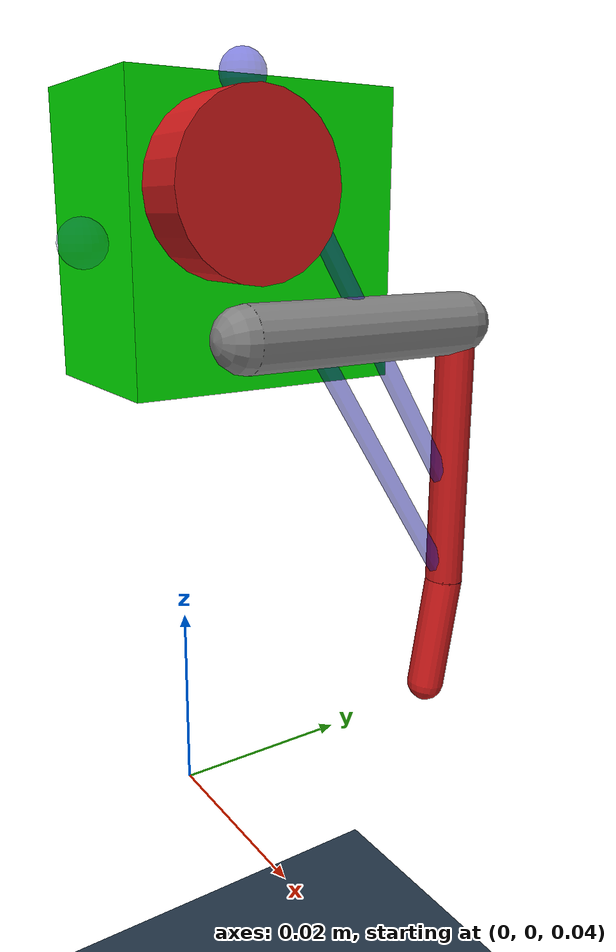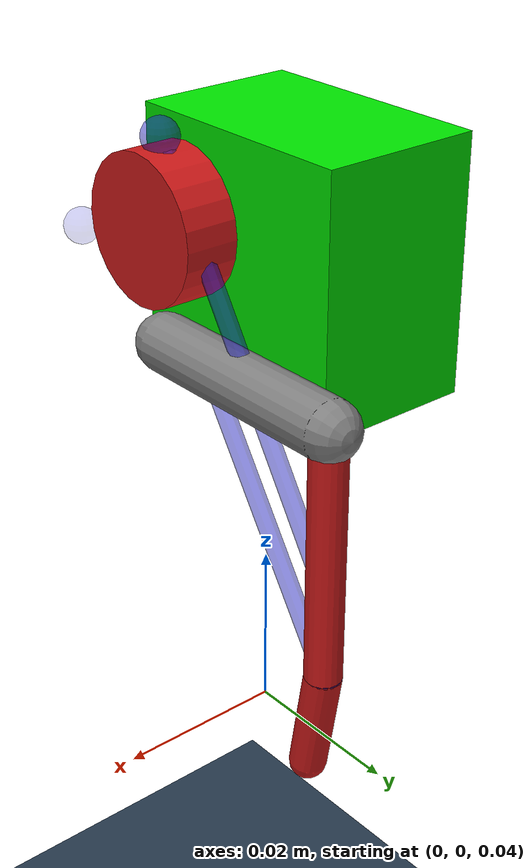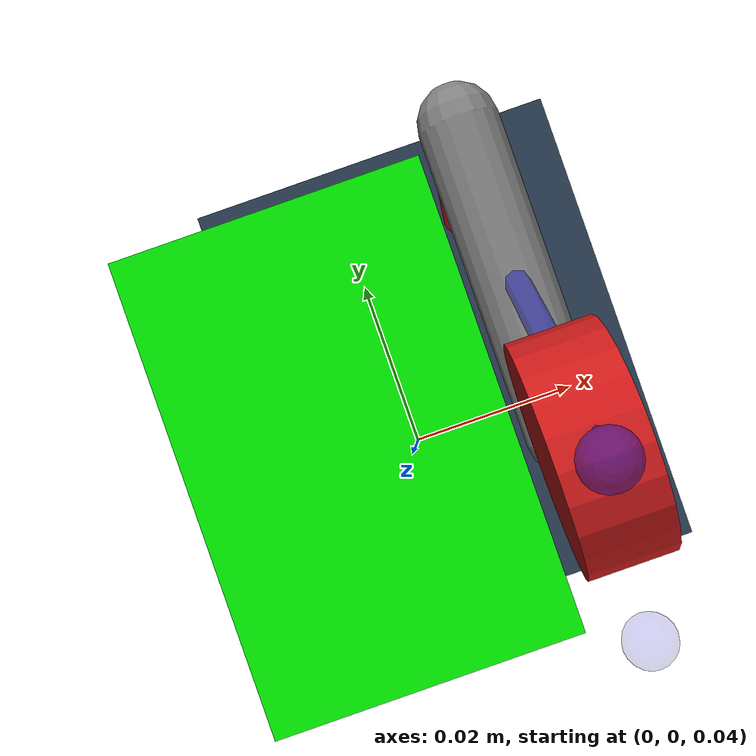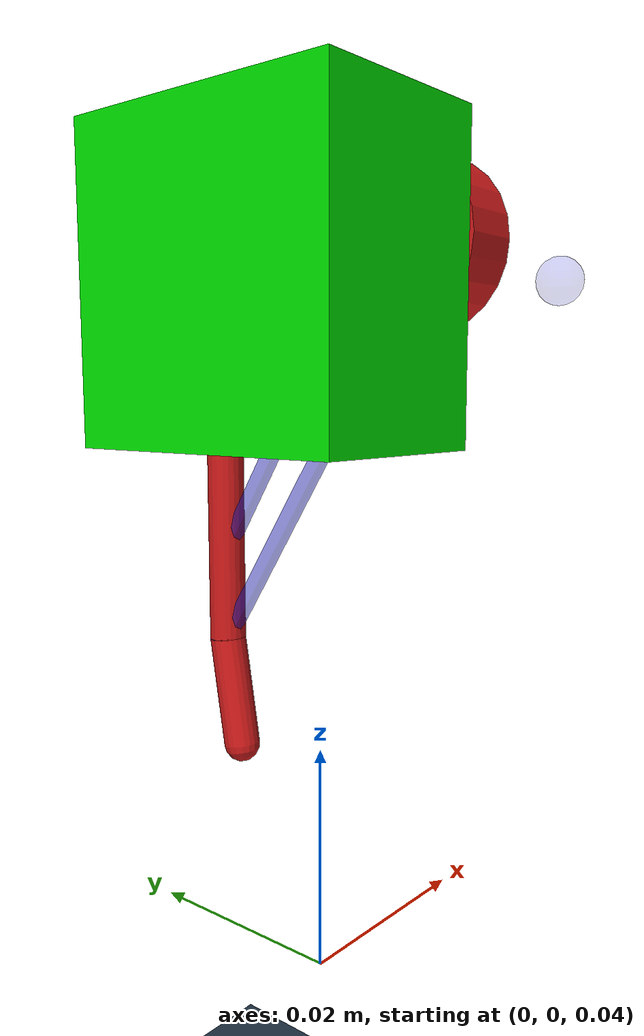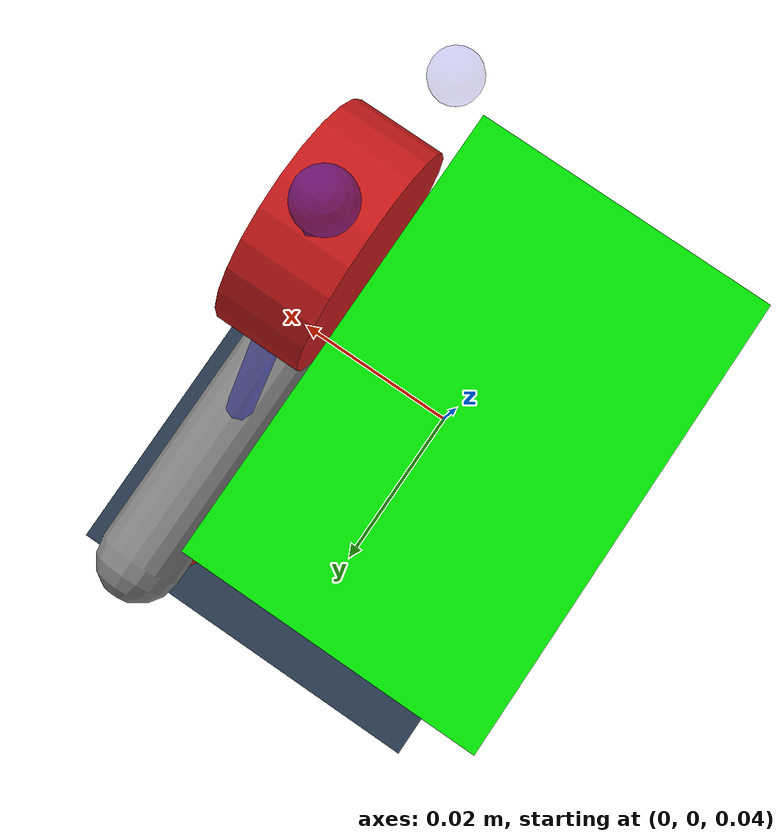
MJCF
<mujoco>

    <compiler angle="degree"/>

    <asset>
        <texture type="skybox" builtin="gradient" rgb1="1 1 1" rgb2=".6 .8 1" width="512" height="512"/>
        <texture name="texplane" type="2d" builtin="checker" rgb1=".2 .3 .4" rgb2=".1 0.15 0.2" width="512" height="512" mark="cross" markrgb=".8 .8 .8"/>

        <material name="matplane" reflectance="0.3" texture="texplane" texrepeat="2 2" texuniform="true"/>
    </asset>

    <option timestep="0.002" o_solimp="0.9 0.95 0.001 0.1 1" o_solref="0.004 2">
        <flag override="enable"/>
    </option>

    <!-- IMPORTANT LEG PARAMETERS FOR MODELS -->
    <!-- lr0= 0.46, l1=0.025, l2=0.018, l3=0.028, l4=0.015, rp=0.008, d1=0.0218 -->

    <worldbody>
        <light directional="false" diffuse=".5 .5 .5" pos="0 0 1" dir="0 0 -1"/>
        <geom type="plane" size="0 0 0.03" material="matplane"/>
        <body pos="0 0.0055 0.1">
            <camera name="body_cam" mode="fixed" pos="0.2 -0.01 0" euler="90 90 0"/>
            <geom name="main_box" mass=".1" type="box" size=".0091 .014 .014" rgba="0 .9 0 1"/>

            <!-- Extension with slider for jumping -->
            <joint name="rail" type="slide" axis="0 0 1" damping="0.1" frictionloss="0.01" pos="0 0 0" limited="true" range="-0.06 0"/>
            <joint name="rail2" type="slide" axis="0 1 0" damping=".1" frictionloss="0.08" pos="0 0 0"/>
            <body name ="main_leg" pos="0.0136 -0.0055 -0.0085">

                <joint name="m1" pos="0 0 0" type="hinge" axis="1 0 0" damping="0.1" armature="0.00065" limited="true" range="-180 180" ref="90"/>
                <geom name="leg1" mass="0.001" type="capsule" fromto="0 0 0 0 0.025 0" size="0.0032"/>
                <site name="knee_start" pos="0 0.0068 0" size="0.002" rgba=".1 .1 .8 0.5"/>
                <body name="lower_leg" pos="0 0.025 0">
                    <joint name="knee1" pos="0 0 0" type="hinge" axis="1 0 0" damping="0.005" armature="0.000065" limited="true" range="-70 70" />
                    <geom name="leg2" type="capsule" mass="0.0015" fromto="0 0 0 0 0 -0.028" size="0.002" rgba=".8 .1 .1 1"/>
                    <geom name="ankle" type="capsule" mass="0.001" fromto="0 0 -0.028 0 -0.002 -0.040" size="0.002" rgba=".8 .1 .1 1"/>
                    <site name="m2_pickup" pos="0 0 -0.018" size="0.002" rgba=".1 .1 .8 0.5"/>
                    <site name="knee_pickup" pos="0 0 -0.028" size="0.002" rgba=".1 .1 .8 0.5"/>
                    <site name="ankle_start" pos="0 0 -0.010" size="0.002" rgba=".1 .1 .8 0.5"/>
                </body>
            </body>

            <site name="x1" pos="0.0136 -0.02 0.00" size="0.002" rgba=".1 .1 .8 0.2"/>
            <body name="servo2" pos="0.0136 -0.0055 0.0043">
                <geom name="motor2" type="cylinder" mass="0.002" fromto="-0.003 0 0 0.003 0 0" size="0.008" rgba=".8 .1 .1 1" />
                <joint name="m2" pos="0 0 0" type="hinge" axis="1 0 0" armature="0.00065" damping="0.1" limited="true" range="-180 180"/>

                <site name="s1" pos="0.0 0 0.009" size="0.002" rgba=".1 .1 .8 0.5"/>
            </body>
        </body>
    </worldbody>

    <contact>
        <exclude body1="main_leg" body2="servo2"/>
    </contact>

    <tendon>
        <spatial name="m2_tendon" limited="true" range="0 0.0587" width="0.001" rgba=".1 .1 .8 0.5">
            <site site="s1"/>
            <geom geom="motor2" sidesite="x1"/>
            <site site="m2_pickup"/>
        </spatial>

        <!-- adjust the stiffness values of these springs -->
        <spatial name="knee_tendon" springlength="0.052" stiffness="200" width="0.001" rgba=".1 .1 .8 0.5">
            <site site="knee_start"/>
            <site site="knee_pickup"/>
        </spatial>

    </tendon>

    <sensor>
        <!-- tendonpos name="tendon_length" tendon="m2_tendon"/-->
        <!-- framepos name="leg_endpoint" objtype="site" objname="end_point"/-->
        <jointpos name="m1" joint="m1"/>
        <jointpos name="m2" joint="m2"/>
        <actuatorfrc name="m1_f" actuator="m1"/>
        <actuatorfrc name="m2_f" actuator="m2"/>
    </sensor>

    <actuator>
        <position name="m1" gear="1" ctrllimited="true" ctrlrange="-3.00 3.00"  forcelimited="true" forcerange="-.8 .8" joint="m1" kp="500"/>
        <position name="m2" gear="1" ctrllimited="true"  ctrlrange="-3.00 3.00 " forcelimited="true" forcerange="-0.8 0.8" joint="m2" kp="500"/>
    </actuator>
</mujoco>
